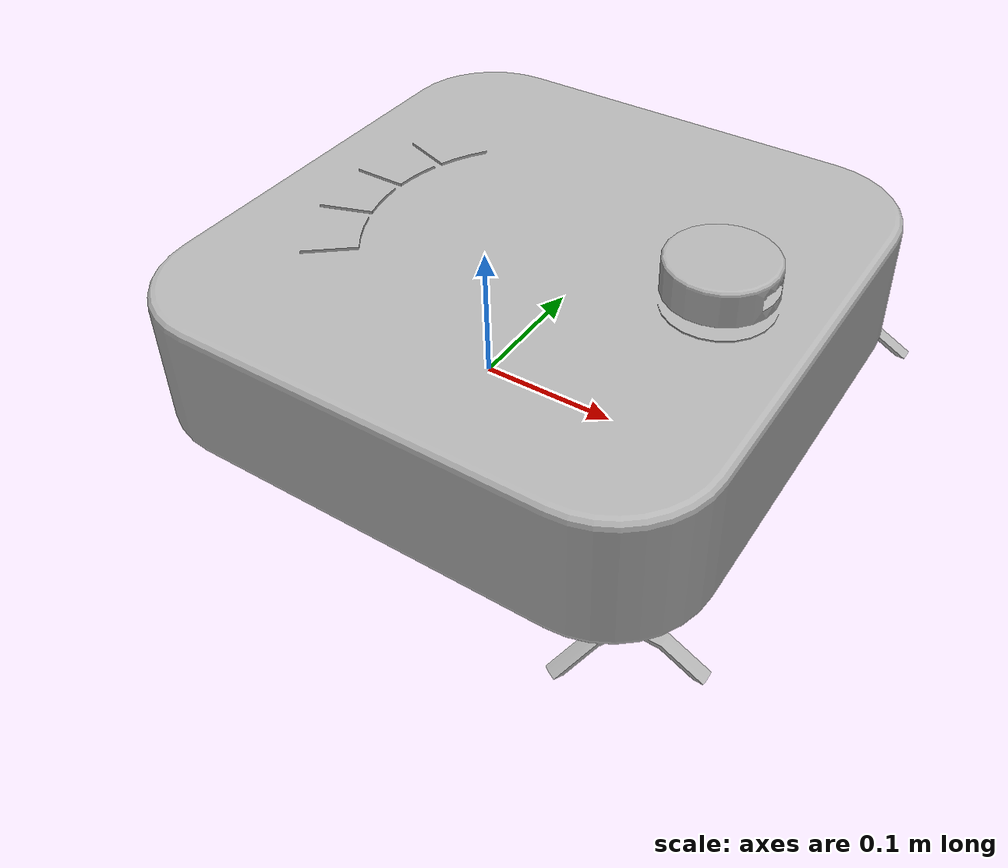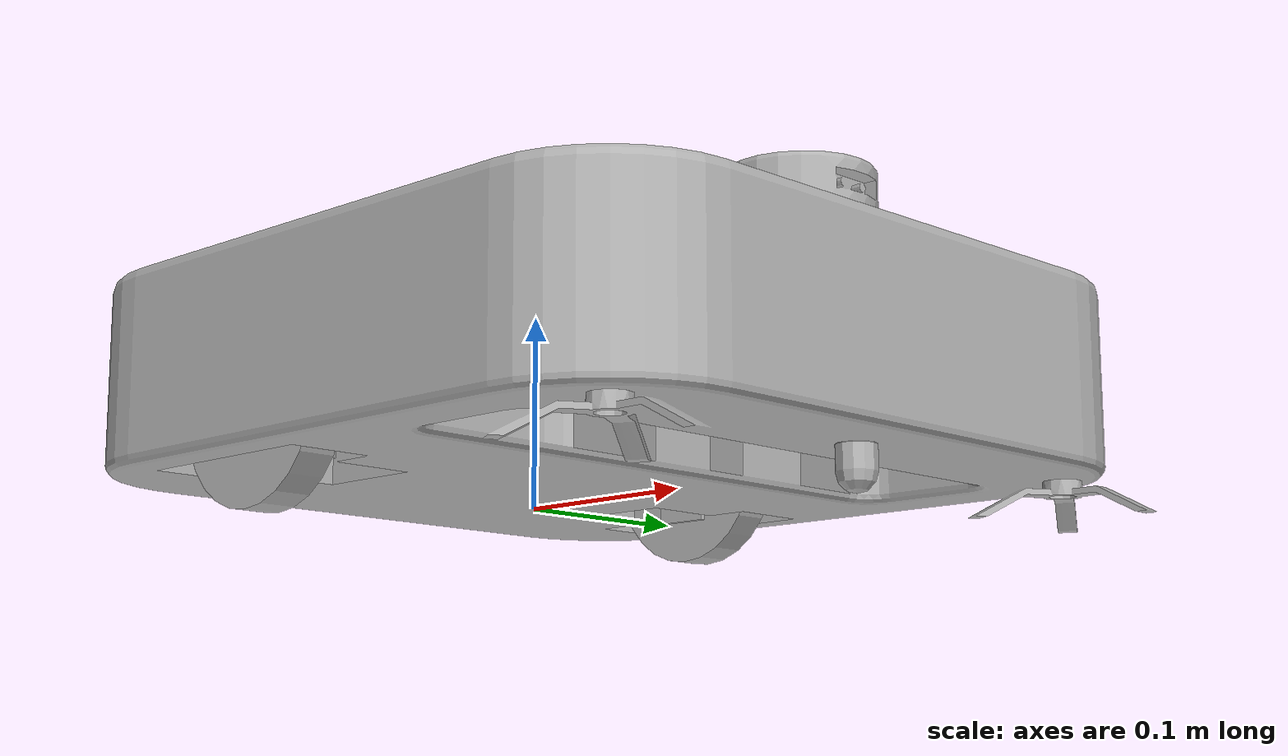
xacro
<?xml version="1.0" ?>
<robot name="open_vac" xmlns:xacro="http://www.ros.org/wiki/xacro">

<xacro:include filename="$(find open_vac_description)/urdf/materials.xacro" />
<xacro:include filename="$(find open_vac_description)/urdf/open_vac.trans" />
<xacro:include filename="$(find open_vac_description)/urdf/open_vac.gazebo" />
<link name="base_link">
  <inertial>
    <origin rpy="0 0 0" xyz="0.023056809904124308 0.019729380607707746 0.06490672418896756"/>
    <mass value="1.8502581137350895"/>
    <inertia ixx="0.033506" ixy="-0.0" ixz="-5.2e-05" iyy="0.029597" iyz="-0.0" izz="0.057752"/>
  </inertial>
  <visual>
    <origin rpy="0 0 0" xyz="0 0 0"/>
    <geometry>
      <mesh filename="package://open_vac_description/meshes/base_link.stl" scale="1 1 1"/>
    </geometry>
    <material name="silver"/>
  </visual>
  <collision>
    <origin rpy="0 0 0" xyz="0 0 0"/>
    <geometry>
      <mesh filename="package://open_vac_description/meshes/base_link.stl" scale="1 1 1"/>
    </geometry>
  </collision>
</link>

<link name="caster_1">
  <inertial>
    <origin rpy="0 0 0" xyz="-4.235604856017705e-07 3.837654570064408e-07 -0.009826544321230108"/>
    <mass value="0.016427387985621034"/>
    <inertia ixx="1e-06" ixy="-0.0" ixz="-0.0" iyy="1e-06" iyz="-0.0" izz="1e-06"/>
  </inertial>
  <visual>
    <origin rpy="0 0 0" xyz="-0.193219 -0.019729 -0.012801"/>
    <geometry>
      <mesh filename="package://open_vac_description/meshes/caster_1.stl" scale="1 1 1"/>
    </geometry>
    <material name="silver"/>
  </visual>
  <collision>
    <origin rpy="0 0 0" xyz="-0.193219 -0.019729 -0.012801"/>
    <geometry>
      <mesh filename="package://open_vac_description/meshes/caster_1.stl" scale="1 1 1"/>
    </geometry>
  </collision>
</link>

<link name="lidar_link_1">
  <inertial>
    <origin rpy="0 0 0" xyz="-0.0011356530900377138 5.333737735126187e-07 0.014923008896609899"/>
    <mass value="0.07613490631013946"/>
    <inertia ixx="3.7e-05" ixy="-0.0" ixz="-0.0" iyy="3.5e-05" iyz="0.0" izz="6.4e-05"/>
  </inertial>
  <visual>
    <origin rpy="0 0 0" xyz="-0.162243 -0.019729 -0.114101"/>
    <geometry>
      <mesh filename="package://open_vac_description/meshes/lidar_link_1.stl" scale="1 1 1"/>
    </geometry>
    <material name="silver"/>
  </visual>
  <collision>
    <origin rpy="0 0 0" xyz="-0.162243 -0.019729 -0.114101"/>
    <geometry>
      <mesh filename="package://open_vac_description/meshes/lidar_link_1.stl" scale="1 1 1"/>
    </geometry>
  </collision>
</link>

<link name="wheel_right_1">
  <inertial>
    <origin rpy="0 0 0" xyz="2.2298898844086423e-07 -0.009999621889384247 4.123690382634715e-07"/>
    <mass value="0.14555640131217312"/>
    <inertia ixx="9.6e-05" ixy="0.0" ixz="0.0" iyy="0.000183" iyz="0.0" izz="9.6e-05"/>
  </inertial>
  <visual>
    <origin rpy="0 0 0" xyz="0.047757 0.126271 -0.039934"/>
    <geometry>
      <mesh filename="package://open_vac_description/meshes/wheel_right_1.stl" scale="1 1 1"/>
    </geometry>
    <material name="silver"/>
  </visual>
  <collision>
    <origin rpy="0 0 0" xyz="0.047757 0.126271 -0.039934"/>
    <geometry>
      <mesh filename="package://open_vac_description/meshes/wheel_right_1.stl" scale="1 1 1"/>
    </geometry>
  </collision>
</link>

<link name="wheel_left_1">
  <inertial>
    <origin rpy="0 0 0" xyz="2.2298898851719207e-07 0.010000382461754775 4.1236903833286043e-07"/>
    <mass value="0.14555640131217312"/>
    <inertia ixx="9.6e-05" ixy="0.0" ixz="0.0" iyy="0.000183" iyz="0.0" izz="9.6e-05"/>
  </inertial>
  <visual>
    <origin rpy="0 0 0" xyz="0.047757 -0.165729 -0.039934"/>
    <geometry>
      <mesh filename="package://open_vac_description/meshes/wheel_left_1.stl" scale="1 1 1"/>
    </geometry>
    <material name="silver"/>
  </visual>
  <collision>
    <origin rpy="0 0 0" xyz="0.047757 -0.165729 -0.039934"/>
    <geometry>
      <mesh filename="package://open_vac_description/meshes/wheel_left_1.stl" scale="1 1 1"/>
    </geometry>
  </collision>
</link>

<joint name="caster_jnt" type="fixed">
  <origin rpy="0 0 0" xyz="0.193219 0.019729 0.012801"/>
  <parent link="base_link"/>
  <child link="caster_1"/>
</joint>

<joint name="lidar_jnt" type="fixed">
  <origin rpy="0 0 0" xyz="0.162243 0.019729 0.124101"/>
  <parent link="base_link"/>
  <child link="lidar_link_1"/>
</joint>

<joint name="right_wheel_jnt" type="continuous">
  <origin rpy="0 0 0" xyz="-0.047757 -0.126271 0.039934"/>
  <parent link="base_link"/>
  <child link="wheel_right_1"/>
  <axis xyz="0.0 1.0 0.0"/>
</joint>

<joint name="left_wheel_jnt" type="continuous">
  <origin rpy="0 0 0" xyz="-0.047757 0.165729 0.039934"/>
  <parent link="base_link"/>
  <child link="wheel_left_1"/>
  <axis xyz="-0.0 1.0 -0.0"/>
</joint>

</robot>

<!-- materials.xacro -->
<robot name="open_vac" xmlns:xacro="http://www.ros.org/wiki/xacro" >

<material name="silver">
  <color rgba="0.700 0.700 0.700 1.000"/>
</material>

</robot>

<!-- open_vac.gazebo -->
<robot name="open_vac" xmlns:xacro="http://www.ros.org/wiki/xacro" >

<xacro:property name="body_color" value="Gazebo/Silver" />

<gazebo>
  <plugin filename="libgazebo_ros_control.so" name="control"/>
</gazebo>

<gazebo>
  <plugin name="differential_drive_controller" filename="libgazebo_ros_diff_drive.so">
    <updateRate>100</updateRate>
    <leftJoint>left_wheel_jnt</leftJoint>
    <rightJoint>right_wheel_jnt</rightJoint>
    <wheelSeparation>0.334</wheelSeparation>
    <wheelDiameter>0.1</wheelDiameter>
    <wheelAcceleration>1.0</wheelAcceleration>
    <wheelTorque>50</wheelTorque>
    <commandTopic>cmd_vel</commandTopic>
    <odometryTopic>odom</odometryTopic>
    <odometryFrame>odom</odometryFrame>
    <robotBaseFrame>base_link</robotBaseFrame>
    <odometrySource>1</odometrySource>
    <publishWheelTF>true</publishWheelTF>
    <publishOdom>true</publishOdom>
    <publishWheelJointState>true</publishWheelJointState>
    <legacyMode>false</legacyMode>
  </plugin>
</gazebo>

<gazebo reference="lidar_link_1">
    <sensor type="gpu_ray" name="rplidar_sensor">
      <pose>0 0 0 0 0 0</pose>
      <visualize>true</visualize>
      <update_rate>40</update_rate>
      <ray>
        <scan>
          <horizontal>
            <samples>720</samples>
            <resolution>1</resolution>
            <min_angle>-3.141592</min_angle>
            <max_angle>3.141592</max_angle>
          </horizontal>
        </scan>
        <range>
          <min>0.10</min>
          <max>8.0</max>
          <resolution>0.01</resolution>
        </range>
        <noise>
          <type>gaussian</type>
          <mean>0.0</mean>
          <stddev>0.01</stddev>
        </noise>
      </ray>
      <plugin name="gazebo_ros_rplidar_controller" filename="libgazebo_ros_gpu_laser.so">
        <topicName>/scan</topicName>
        <frameName>lidar_link_1</frameName>
      </plugin>
    </sensor>
  </gazebo>

<gazebo reference="base_link">
  <material>${body_color}</material>
  <mu1>0.2</mu1>
  <mu2>0.2</mu2>
  <selfCollide>true</selfCollide>
  <gravity>true</gravity>
</gazebo>

<gazebo reference="caster_1">
  <material>${body_color}</material>
  <mu1>0.2</mu1>
  <mu2>0.2</mu2>
  <selfCollide>true</selfCollide>
</gazebo>

<gazebo reference="lidar_link_1">
  <material>${body_color}</material>
  <mu1>0.2</mu1>
  <mu2>0.2</mu2>
  <selfCollide>true</selfCollide>
</gazebo>

<gazebo reference="wheel_right_1">
  <material>${body_color}</material>
  <mu1>0.2</mu1>
  <mu2>0.2</mu2>
  <selfCollide>true</selfCollide>
</gazebo>

<gazebo reference="wheel_left_1">
  <material>${body_color}</material>
  <mu1>0.2</mu1>
  <mu2>0.2</mu2>
  <selfCollide>true</selfCollide>
</gazebo>

</robot>
